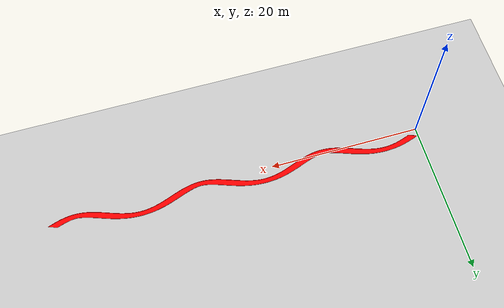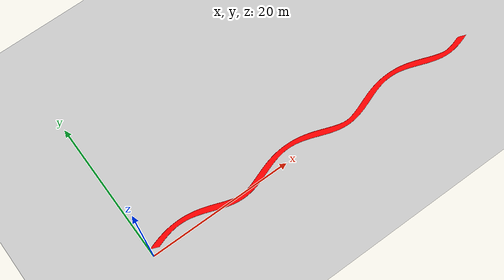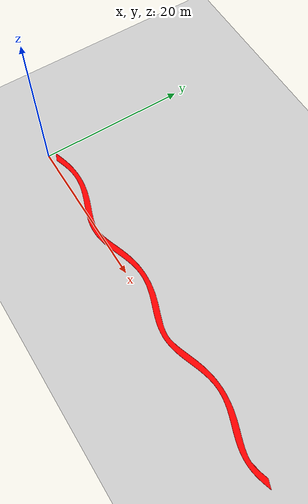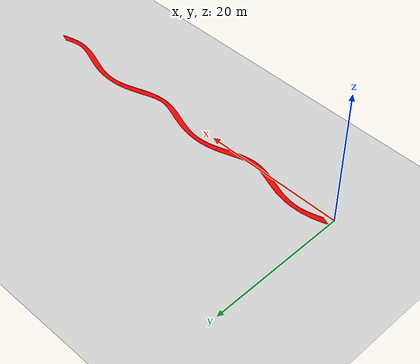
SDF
<sdf version="1.7">
 <world name="default">
  <model name="ground_plane">
   <static>1</static>
   <link name="link">
    <collision name="collision">
     <geometry><plane><normal>0 0 1</normal><size>100 100</size></plane></geometry>
     <surface>
      <contact><collide_bitmask>65535</collide_bitmask></contact>
      <friction><ode><mu>100</mu><mu2>50</mu2></ode></friction>
     </surface>
    </collision>
    <visual name="visual">
     <cast_shadows>0</cast_shadows>
     <geometry><plane><normal>0 0 1</normal><size>100 100</size></plane></geometry>
     <material>
      <script><uri>file://media/materials/scripts/gazebo.material</uri><name>Gazebo/Grey</name></script>
     </material>
    </visual>
   </link>
  </model>
  <gravity>0 0 -9.8</gravity>
  <magnetic_field>6e-06 2.3e-05 -4.2e-05</magnetic_field>
  <atmosphere type="adiabatic"/>
  <physics type="ode">
   <max_step_size>0.001</max_step_size>
   <real_time_factor>1</real_time_factor>
   <real_time_update_rate>1000</real_time_update_rate>
  </physics>
  <scene><ambient>0.4 0.4 0.4 1</ambient><background>0.7 0.7 0.7 1</background><shadows>1</shadows></scene>
  <audio><device>default</device></audio>
  <spherical_coordinates>
   <surface_model>EARTH_WGS84</surface_model>
   <latitude_deg>0</latitude_deg>
   <longitude_deg>0</longitude_deg>
   <elevation>0</elevation>
   <heading_deg>0</heading_deg>
  </spherical_coordinates>
  <model name="curve_path">
   <link name="link">
    <inertial>
     <mass>1</mass>
     <inertia><ixx>1</ixx><ixy>0</ixy><ixz>0</ixz><iyy>1</iyy><iyz>0</iyz><izz>1</izz></inertia>
    </inertial>
    <visual name="visual1">
     <geometry><mesh><uri>model://curve_path/meshes/path.dae</uri></mesh></geometry>
     <material>
      <shader type="pixel"><normal_map>__default__</normal_map></shader>
      <script><name>ModelPreview_1::link::visual1_MATERIAL_</name><uri>__default__</uri></script>
      <ambient>1 0 0 1</ambient>
      <diffuse>1 0 0 1</diffuse>
      <specular>1 0 0 1</specular>
      <emissive>0 0 0 1</emissive>
     </material>
    </visual>
    <collision name="colision1">
     <geometry>
      <mesh><uri>/home/orange/.gazebo/models/curve_path/meshes/path.dae</uri><scale>1 1 1</scale></mesh>
     </geometry>
     <surface>
      <friction>
       <ode><mu>1</mu><mu2>1</mu2><fdir1>0 0 0</fdir1><slip1>0</slip1><slip2>0</slip2></ode>
       <torsional>
        <coefficient>1</coefficient>
        <patch_radius>0</patch_radius>
        <surface_radius>0</surface_radius>
        <use_patch_radius>1</use_patch_radius>
        <ode><slip>0</slip></ode>
       </torsional>
      </friction>
      <bounce><restitution_coefficient>0</restitution_coefficient><threshold>1e+06</threshold></bounce>
      <contact>
       <collide_without_contact>0</collide_without_contact>
       <collide_without_contact_bitmask>1</collide_without_contact_bitmask>
       <collide_bitmask>1</collide_bitmask>
       <ode>
        <soft_cfm>0</soft_cfm>
        <soft_erp>0.2</soft_erp>
        <kp>1e+13</kp>
        <kd>1</kd>
        <max_vel>0.01</max_vel>
        <min_depth>0</min_depth>
       </ode>
       <bullet>
        <split_impulse>1</split_impulse>
        <split_impulse_penetration_threshold>-0.01</split_impulse_penetration_threshold>
        <soft_cfm>0</soft_cfm>
        <soft_erp>0.2</soft_erp>
        <kp>1e+13</kp>
        <kd>1</kd>
       </bullet>
      </contact>
     </surface>
    </collision>
   </link>
   <static>1</static>
   <pose>25.4268 0.394199 -0.060986 0 -0 0</pose>
  </model>
 </world>
</sdf>
